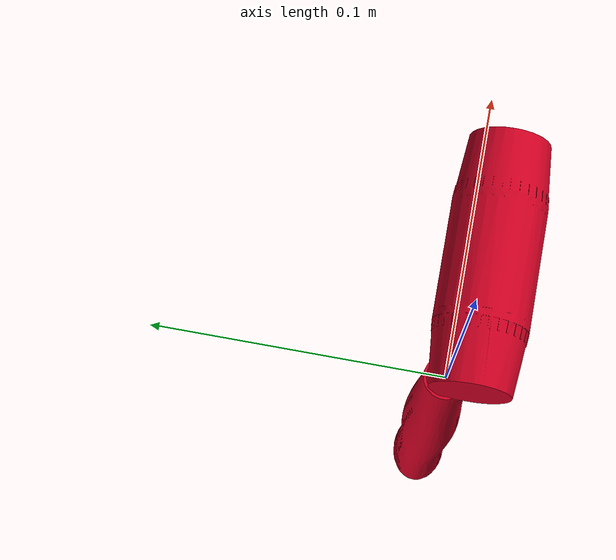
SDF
<?xml version="1.0"?>
<sdf version="1.7">
  <model name="rubber_mallet_25mm_bright">
    <pose>0 0 0 0 0 0</pose>
    <static>false</static>
    <link name="link">
      <!-- link frame = tool CoM; Z = long axis (+ toward tool end), X = forward, Y = Z x X -->
      <inertial>
        <pose>0 0 0 0 0 0</pose>
        <mass>0.334704</mass>
        <inertia>
          <ixx>2.323224e-03</ixx>
          <ixy>3.940122e-10</ixy>
          <ixz>1.521024e-07</ixz>
          <iyy>2.334817e-03</iyy>
          <iyz>3.436982e-08</iyz>
          <izz>2.156797e-05</izz>
        </inertia>
      </inertial>
      <collision name="collision">
        <geometry>
          <mesh>
            <uri>model://rubber_mallet_25mm/meshes/rubber_mallet_25mm.dae</uri>
          </mesh>
        </geometry>
      </collision>
      <visual name="visual">
        <geometry>
          <mesh>
            <uri>model://rubber_mallet_25mm/meshes/rubber_mallet_25mm.dae</uri>
          </mesh>
        </geometry>
        <material>
          <ambient>0.369 0.000 0.061 1.0</ambient>
          <diffuse>0.820 0.000 0.135 1.0</diffuse>
          <specular>0.85 0.85 0.85 1.0</specular>
          <emissive>0 0 0 1.0</emissive>
        </material>
      </visual>
    </link>
  </model>
</sdf>
